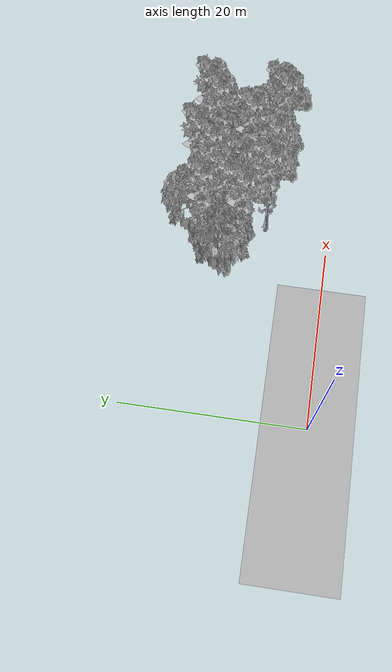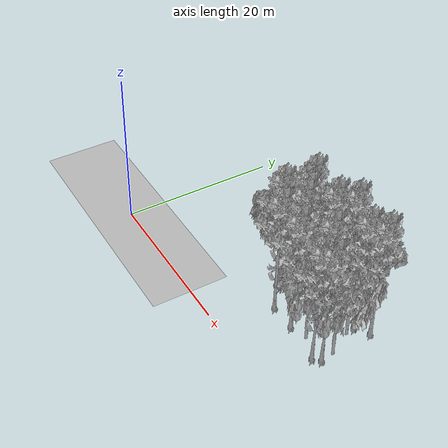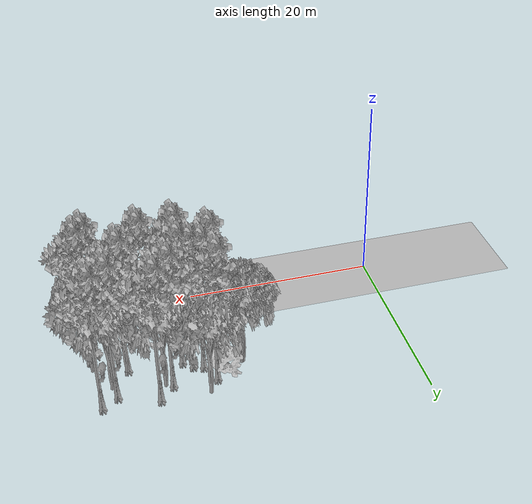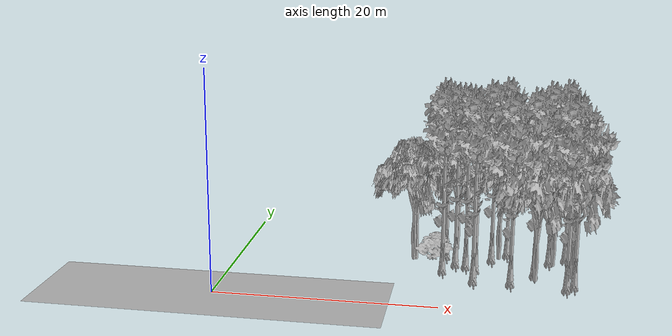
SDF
<sdf version="1.7">
 <world name="default">
  <model name="ground_plane">
   <static>1</static>
   <link name="link">
    <collision name="collision">
     <pose>-50 0 0 0 -0 0</pose>
     <geometry><plane><normal>0 0 1</normal><size>100 100</size></plane></geometry>
     <surface><contact><ode><min_depth>0.01</min_depth><max_vel>0</max_vel></ode></contact></surface>
    </collision>
    <visual name="grass">
     <cast_shadows>0</cast_shadows>
     <geometry>
      <mesh>
       <scale>0.5814285714285714 0.18142857142857144 0.1</scale>
       <uri>file://grass_plane/meshes/grass_plane.dae</uri>
      </mesh>
     </geometry>
    </visual>
   </link>
  </model>
  <model name="Tree 9">
   <static>1</static>
   <pose>19.874703441783964 13.270476676927117 0 1.57079 -0 0</pose>
   <link name="link">
    <collision name="collision">
     <geometry><mesh><scale>3.5 5 3.5</scale><uri>model://tree_9/meshes/tree_9.obj</uri></mesh></geometry>
    </collision>
    <visual name="visual">
     <geometry><mesh><scale>3.5 5 3.5</scale><uri>model://tree_9/meshes/tree_9.obj</uri></mesh></geometry>
    </visual>
   </link>
  </model>
  <model name="Tree 57">
   <static>1</static>
   <pose>25.709015394830487 14.674854050383004 0 1.57079 -0 0</pose>
   <link name="link">
    <collision name="collision">
     <geometry><mesh><scale>3.5 5 3.5</scale><uri>model://tree_9/meshes/tree_9.obj</uri></mesh></geometry>
    </collision>
    <visual name="visual">
     <geometry><mesh><scale>3.5 5 3.5</scale><uri>model://tree_9/meshes/tree_9.obj</uri></mesh></geometry>
    </visual>
   </link>
  </model>
  <model name="Tree 72">
   <static>1</static>
   <pose>16.776963000411754 11.494310241247046 0 1.57079 -0 0</pose>
   <link name="link">
    <collision name="collision">
     <geometry><mesh><scale>3.5 5 3.5</scale><uri>model://tree_2/meshes/tree_2.obj</uri></mesh></geometry>
    </collision>
    <visual name="visual">
     <geometry><mesh><scale>3.5 5 3.5</scale><uri>model://tree_2/meshes/tree_2.obj</uri></mesh></geometry>
    </visual>
   </link>
  </model>
  <model name="Tree 79">
   <static>1</static>
   <pose>18.607296986123615 12.128587494622291 0 1.57079 -0 0</pose>
   <link name="link">
    <collision name="collision">
     <geometry><mesh><scale>4 2.5 4</scale><uri>model://tree_1/meshes/tree_1.obj</uri></mesh></geometry>
    </collision>
    <visual name="visual">
     <geometry><mesh><scale>4 2.5 4</scale><uri>model://tree_1/meshes/tree_1.obj</uri></mesh></geometry>
    </visual>
   </link>
  </model>
  <model name="Tree 95">
   <static>1</static>
   <pose>29.918835373697746 11.888059151855153 0 1.57079 -0 0</pose>
   <link name="link">
    <collision name="collision">
     <geometry><mesh><scale>3.5 5 3.5</scale><uri>model://tree_2/meshes/tree_2.obj</uri></mesh></geometry>
    </collision>
    <visual name="visual">
     <geometry><mesh><scale>3.5 5 3.5</scale><uri>model://tree_2/meshes/tree_2.obj</uri></mesh></geometry>
    </visual>
   </link>
  </model>
  <model name="Tree 104">
   <static>1</static>
   <pose>28.203155106485113 9.643069465694218 0 1.57079 -0 0</pose>
   <link name="link">
    <collision name="collision">
     <geometry><mesh><scale>3.5 5 3.5</scale><uri>model://tree_9/meshes/tree_9.obj</uri></mesh></geometry>
    </collision>
    <visual name="visual">
     <geometry><mesh><scale>3.5 5 3.5</scale><uri>model://tree_9/meshes/tree_9.obj</uri></mesh></geometry>
    </visual>
   </link>
  </model>
  <model name="Tree 123">
   <static>1</static>
   <pose>22.6627254083769 7.130612096055863 0 1.57079 -0 0</pose>
   <link name="link">
    <collision name="collision">
     <geometry><mesh><scale>3.5 5 3.5</scale><uri>model://tree_9/meshes/tree_9.obj</uri></mesh></geometry>
    </collision>
    <visual name="visual">
     <geometry><mesh><scale>3.5 5 3.5</scale><uri>model://tree_9/meshes/tree_9.obj</uri></mesh></geometry>
    </visual>
   </link>
  </model>
  <model name="Tree 127">
   <static>1</static>
   <pose>26.026588982396092 7.104288358878254 0 1.57079 -0 0</pose>
   <link name="link">
    <collision name="collision">
     <geometry><mesh><scale>3.5 5 3.5</scale><uri>model://tree_9/meshes/tree_9.obj</uri></mesh></geometry>
    </collision>
    <visual name="visual">
     <geometry><mesh><scale>3.5 5 3.5</scale><uri>model://tree_9/meshes/tree_9.obj</uri></mesh></geometry>
    </visual>
   </link>
  </model>
  <model name="Tree 154">
   <static>1</static>
   <pose>16.976423338137735 11.598404557685733 0 1.57079 -0 0</pose>
   <link name="link">
    <collision name="collision">
     <geometry><mesh><scale>3.5 5 3.5</scale><uri>model://tree_2/meshes/tree_2.obj</uri></mesh></geometry>
    </collision>
    <visual name="visual">
     <geometry><mesh><scale>3.5 5 3.5</scale><uri>model://tree_2/meshes/tree_2.obj</uri></mesh></geometry>
    </visual>
   </link>
  </model>
  <model name="Tree 250">
   <static>1</static>
   <pose>19.728364458270818 9.292055900834022 0 1.57079 -0 0</pose>
   <link name="link">
    <collision name="collision">
     <geometry><mesh><scale>3.5 5 3.5</scale><uri>model://tree_9/meshes/tree_9.obj</uri></mesh></geometry>
    </collision>
    <visual name="visual">
     <geometry><mesh><scale>3.5 5 3.5</scale><uri>model://tree_9/meshes/tree_9.obj</uri></mesh></geometry>
    </visual>
   </link>
  </model>
  <model name="Tree 272">
   <static>1</static>
   <pose>21.849397062869997 10.82751387105758 0 1.57079 -0 0</pose>
   <link name="link">
    <collision name="collision">
     <geometry><mesh><scale>3.5 5 3.5</scale><uri>model://tree_9/meshes/tree_9.obj</uri></mesh></geometry>
    </collision>
    <visual name="visual">
     <geometry><mesh><scale>3.5 5 3.5</scale><uri>model://tree_9/meshes/tree_9.obj</uri></mesh></geometry>
    </visual>
   </link>
  </model>
  <model name="Tree 276">
   <static>1</static>
   <pose>28.16637023572345 7.645037775786829 0 1.57079 -0 0</pose>
   <link name="link">
    <collision name="collision">
     <geometry><mesh><scale>3.5 5 3.5</scale><uri>model://tree_2/meshes/tree_2.obj</uri></mesh></geometry>
    </collision>
    <visual name="visual">
     <geometry><mesh><scale>3.5 5 3.5</scale><uri>model://tree_2/meshes/tree_2.obj</uri></mesh></geometry>
    </visual>
   </link>
  </model>
  <model name="Tree 318">
   <static>1</static>
   <pose>20.770378456811088 14.99542525901849 0 1.57079 -0 0</pose>
   <link name="link">
    <collision name="collision">
     <geometry><mesh><scale>3.5 5 3.5</scale><uri>model://tree_2/meshes/tree_2.obj</uri></mesh></geometry>
    </collision>
    <visual name="visual">
     <geometry><mesh><scale>3.5 5 3.5</scale><uri>model://tree_2/meshes/tree_2.obj</uri></mesh></geometry>
    </visual>
   </link>
  </model>
  <model name="Tree 349">
   <static>1</static>
   <pose>31.27621722672238 14.241796182860092 0 1.57079 -0 0</pose>
   <link name="link">
    <collision name="collision">
     <geometry><mesh><scale>3.5 5 3.5</scale><uri>model://tree_9/meshes/tree_9.obj</uri></mesh></geometry>
    </collision>
    <visual name="visual">
     <geometry><mesh><scale>3.5 5 3.5</scale><uri>model://tree_9/meshes/tree_9.obj</uri></mesh></geometry>
    </visual>
   </link>
  </model>
  <model name="Tree 353">
   <static>1</static>
   <pose>22.790743464883036 9.987146315695227 0 1.57079 -0 0</pose>
   <link name="link">
    <collision name="collision">
     <geometry><mesh><scale>3.5 5 3.5</scale><uri>model://tree_9/meshes/tree_9.obj</uri></mesh></geometry>
    </collision>
    <visual name="visual">
     <geometry><mesh><scale>3.5 5 3.5</scale><uri>model://tree_9/meshes/tree_9.obj</uri></mesh></geometry>
    </visual>
   </link>
  </model>
  <model name="Tree 369">
   <static>1</static>
   <pose>28.22677815594217 9.83703347342097 0 1.57079 -0 0</pose>
   <link name="link">
    <collision name="collision">
     <geometry><mesh><scale>3.5 5 3.5</scale><uri>model://tree_2/meshes/tree_2.obj</uri></mesh></geometry>
    </collision>
    <visual name="visual">
     <geometry><mesh><scale>3.5 5 3.5</scale><uri>model://tree_2/meshes/tree_2.obj</uri></mesh></geometry>
    </visual>
   </link>
  </model>
  <model name="Tree 385">
   <static>1</static>
   <pose>20.86027537529371 11.21865317868986 0 1.57079 -0 0</pose>
   <link name="link">
    <collision name="collision">
     <geometry><mesh><scale>3.5 5 3.5</scale><uri>model://tree_9/meshes/tree_9.obj</uri></mesh></geometry>
    </collision>
    <visual name="visual">
     <geometry><mesh><scale>3.5 5 3.5</scale><uri>model://tree_9/meshes/tree_9.obj</uri></mesh></geometry>
    </visual>
   </link>
  </model>
  <model name="Tree 421">
   <static>1</static>
   <pose>24.240267537026313 13.0160339755226 0 1.57079 -0 0</pose>
   <link name="link">
    <collision name="collision">
     <geometry><mesh><scale>3.5 5 3.5</scale><uri>model://tree_9/meshes/tree_9.obj</uri></mesh></geometry>
    </collision>
    <visual name="visual">
     <geometry><mesh><scale>3.5 5 3.5</scale><uri>model://tree_9/meshes/tree_9.obj</uri></mesh></geometry>
    </visual>
   </link>
  </model>
  <model name="Tree 453">
   <static>1</static>
   <pose>31.49691314443224 8.880443899032123 0 1.57079 -0 0</pose>
   <link name="link">
    <collision name="collision">
     <geometry><mesh><scale>3.5 5 3.5</scale><uri>model://tree_2/meshes/tree_2.obj</uri></mesh></geometry>
    </collision>
    <visual name="visual">
     <geometry><mesh><scale>3.5 5 3.5</scale><uri>model://tree_2/meshes/tree_2.obj</uri></mesh></geometry>
    </visual>
   </link>
  </model>
  <model name="Tree 465">
   <static>1</static>
   <pose>31.723079880470294 7.300769182740623 0 1.57079 -0 0</pose>
   <link name="link">
    <collision name="collision">
     <geometry><mesh><scale>3.5 5 3.5</scale><uri>model://tree_9/meshes/tree_9.obj</uri></mesh></geometry>
    </collision>
    <visual name="visual">
     <geometry><mesh><scale>3.5 5 3.5</scale><uri>model://tree_9/meshes/tree_9.obj</uri></mesh></geometry>
    </visual>
   </link>
  </model>
  <model name="Tree 476">
   <static>1</static>
   <pose>30.99755050668304 6.531857680566535 0 1.57079 -0 0</pose>
   <link name="link">
    <collision name="collision">
     <geometry><mesh><scale>3.5 5 3.5</scale><uri>model://tree_9/meshes/tree_9.obj</uri></mesh></geometry>
    </collision>
    <visual name="visual">
     <geometry><mesh><scale>3.5 5 3.5</scale><uri>model://tree_9/meshes/tree_9.obj</uri></mesh></geometry>
    </visual>
   </link>
  </model>
  <model name="Tree 504">
   <static>1</static>
   <pose>29.68939390675645 13.154075354513758 0 1.57079 -0 0</pose>
   <link name="link">
    <collision name="collision">
     <geometry><mesh><scale>3.5 5 3.5</scale><uri>model://tree_9/meshes/tree_9.obj</uri></mesh></geometry>
    </collision>
    <visual name="visual">
     <geometry><mesh><scale>3.5 5 3.5</scale><uri>model://tree_9/meshes/tree_9.obj</uri></mesh></geometry>
    </visual>
   </link>
  </model>
  <model name="Tree 532">
   <static>1</static>
   <pose>24.844082150454952 12.911653396994915 0 1.57079 -0 0</pose>
   <link name="link">
    <collision name="collision">
     <geometry><mesh><scale>3.5 5 3.5</scale><uri>model://tree_2/meshes/tree_2.obj</uri></mesh></geometry>
    </collision>
    <visual name="visual">
     <geometry><mesh><scale>3.5 5 3.5</scale><uri>model://tree_2/meshes/tree_2.obj</uri></mesh></geometry>
    </visual>
   </link>
  </model>
 </world>
</sdf>
